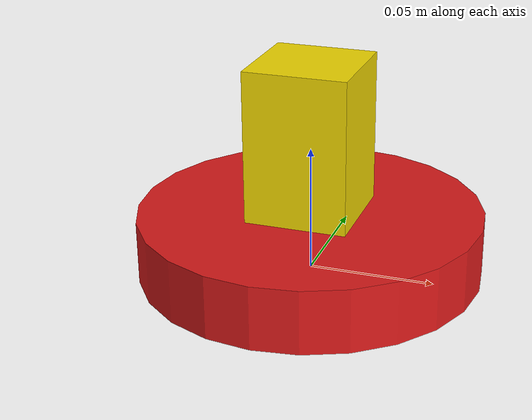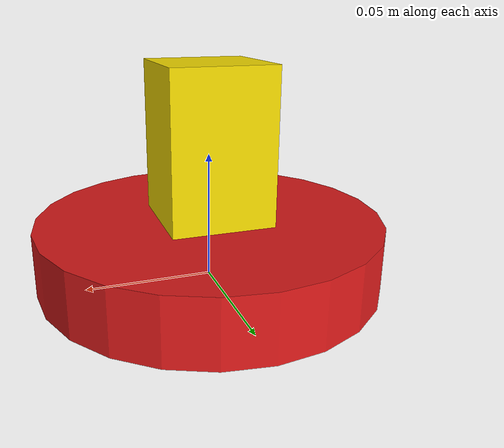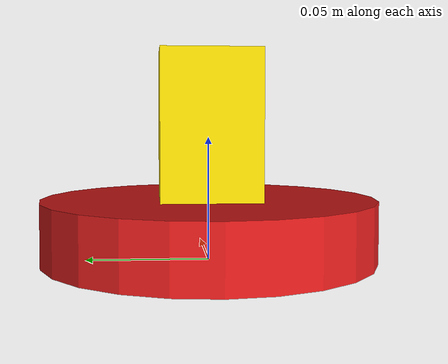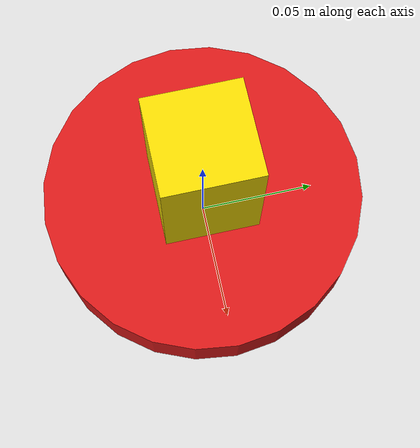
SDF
<?xml version="1.0" ?>
<sdf version="1.6">
  <model name="landmine">
    <static>false</static>

    <link name="body">
      <!-- Inertial: combined mass ~0.3kg, approximated as a solid cylinder. COM lifted toward center. -->
      <inertial>
        <pose>0 0 0.03 0 0 0</pose>
        <mass>0.30</mass>
        <inertia>
          <ixx>0.00039</ixx>
          <iyy>0.00039</iyy>
          <izz>0.00045</izz>
          <ixy>0.0</ixy>
          <ixz>0.0</ixz>
          <iyz>0.0</iyz>
        </inertia>
      </inertial>

      <!-- ===== Disc body (mine) ===== -->
      <collision name="disc_collision">
        <pose>0 0 0.0125 0 0 0</pose>
        <geometry>
          <cylinder>
            <radius>0.068</radius>
            <length>0.025</length>
          </cylinder>
        </geometry>
        <surface>
          <friction>
            <ode>
              <mu>1.0</mu>
              <mu2>1.0</mu2>
            </ode>
          </friction>
          <contact>
            <ode>
              <kp>1e6</kp>
              <kd>1.0</kd>
              <max_vel>0.0</max_vel>
              <min_depth>0.001</min_depth>
            </ode>
          </contact>
        </surface>
      </collision>
      <visual name="disc_visual">
        <pose>0 0 0.0125 0 0 0</pose>
        <geometry>
          <cylinder>
            <radius>0.068</radius>
            <length>0.025</length>
          </cylinder>
        </geometry>
        <material>
          <ambient>0.7 0.05 0.05 1</ambient>
          <diffuse>0.85 0.1 0.1 1</diffuse>
          <specular>0.1 0.1 0.1 1</specular>
        </material>
      </visual>

      <!-- ===== Detonator block (grasp target) ===== -->
      <collision name="detonator_collision">
        <pose>0 0 0.055 0 0 0</pose>
        <geometry>
          <box>
            <size>0.04 0.04 0.06</size>
          </box>
        </geometry>
        <surface>
          <friction>
            <ode>
              <mu>1.2</mu>
              <mu2>1.2</mu2>
            </ode>
          </friction>
          <contact>
            <ode>
              <kp>1e6</kp>
              <kd>1.0</kd>
              <max_vel>0.0</max_vel>
              <min_depth>0.001</min_depth>
            </ode>
          </contact>
        </surface>
      </collision>
      <visual name="detonator_visual">
        <pose>0 0 0.055 0 0 0</pose>
        <geometry>
          <box>
            <size>0.04 0.04 0.06</size>
          </box>
        </geometry>
        <material>
          <ambient>0.8 0.7 0.0 1</ambient>
          <diffuse>0.95 0.85 0.0 1</diffuse>
          <specular>0.2 0.2 0.1 1</specular>
        </material>
      </visual>
    </link>
  </model>
</sdf>
